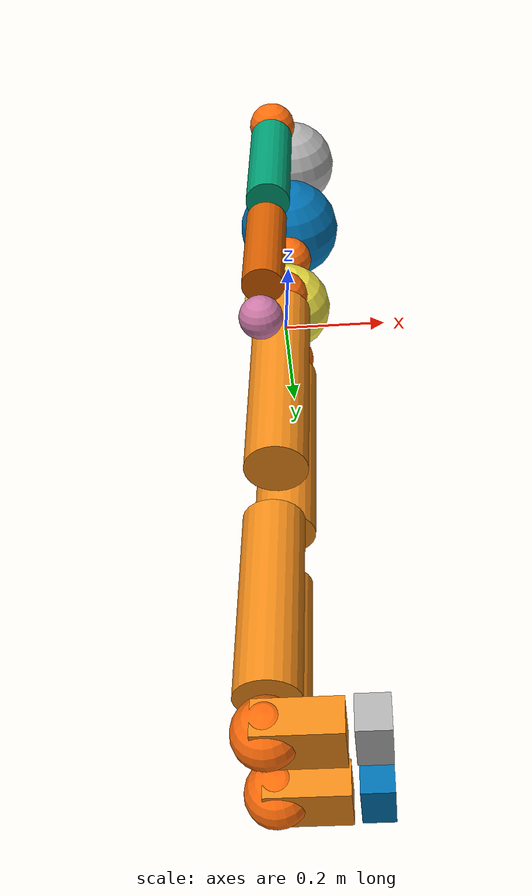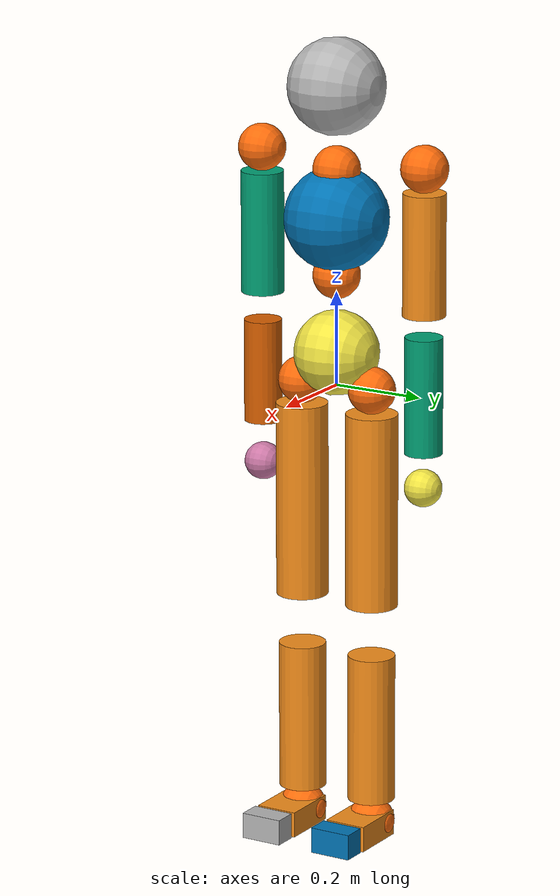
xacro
<?xml version="1.0"?>
<robot  xmlns:xacro="http://www.ros.org/wiki/xacro"  name="dumpUrdf">
  <xacro:include filename="$(find wearable_robot_description)/urdf/human_45dof.gazebo"/>

<xacro:macro name="ball_joint" params="parent child limit effort_limit *origin">

  <link name="${parent}_${child}_link1">
    <inertial>
      <mass value="1e-02" />
      <inertia ixx="1e-02" ixy="0" ixz="0" iyy="1e-02" iyz="0" izz="1e-02" />
    </inertial>
  </link>

  <joint name="j_${parent}_${child}_joint1" type="revolute">
	<xacro:insert_block name="origin"/>
    <parent link="${parent}"/>
    <child link="${parent}_${child}_link1"/>
    <axis xyz="1 0 0" />
	<limit effort="${effort_limit}" lower="${-limit}" upper="${limit}" velocity="3"/>
  </joint>

  <link name="${parent}_${child}_link2">
    <inertial>
      <mass value="1e-02" />
      <inertia ixx="1e-02" ixy="0" ixz="0" iyy="1e-02" iyz="0" izz="1e-02" />
    </inertial>

	<visual>
		<geometry>
			<sphere radius="0.05"  />
		</geometry>
		<material name="orange"/>
	</visual>
  </link>

  <joint name="j_${parent}_${child}_joint2" type="revolute">
    <parent link="${parent}_${child}_link1"/>
    <child link="${parent}_${child}_link2"/>
    <axis xyz="0 1 0" />
	<limit effort="${effort_limit}" lower="${-limit}" upper="${limit}" velocity="3"/>
  </joint>

  <joint name="j_${parent}_${child}_joint3" type="revolute">
    <parent link="${parent}_${child}_link2"/>
    <child link="${child}"/>
    <axis xyz="0 0 1" />
	<limit effort="${effort_limit}" lower="${-limit}" upper="${limit}" velocity="3"/>
  </joint>

</xacro:macro>

<xacro:macro name="sphere_v_c" params="radius *origin">
	<collision>
		<xacro:insert_block name="origin"/>
		<geometry>
			<sphere radius = "${radius/2}"/>
		</geometry>
	</collision>
	<visual>
		<xacro:insert_block name="origin"/>
		<geometry>
			<sphere radius="${radius/2}"/>
		</geometry>
	</visual>
</xacro:macro>

<xacro:macro name="cylinder_v_c" params="radius length *origin">
	<collision>
		<xacro:insert_block name="origin"/>
		<geometry>
			<cylinder length="${length*3/4}" radius = "${radius/4}"/>
		</geometry>
	</collision>
	<visual>
		<xacro:insert_block name="origin"/>
		<geometry>
			<cylinder length="${length}" radius="${radius/2}"/>
		</geometry>
	</visual>
</xacro:macro>

<xacro:macro name="box_v_c" params="x y z *origin">
	<collision>
		<xacro:insert_block name="origin"/>
		<geometry>
			<box size="${x} ${y} ${z}" />
		</geometry>
	</collision>
	<visual>
		<xacro:insert_block name="origin"/>
		<geometry>
			<box size="${x} ${y} ${z}" />
		</geometry>
	</visual>

</xacro:macro>

  <link name="world"/>
  <joint name="world_to_baselink_fixed" type="fixed">
    <parent link="world" />
    <child  link = "base_link" />
    <origin xyz="0 0 0" rpy="0 0 0" />
  </joint>

  <xacro:include filename="$(find wearable_robot_description)/urdf/humans/W0001.urdf"/>

  <ros2_control name="GazeboSystem" type="system">
    <hardware>
      <plugin>gazebo_ros2_control/GazeboSystem</plugin>
    </hardware>

    <joint name="j_left_elbow">
      <command_interface name="effort">
        <param name="min">-300.0</param>
        <param name="max">+300.0</param>
      </command_interface>
      <state_interface name="position"/>
      <state_interface name="velocity"/>
      <state_interface name="effort"/>
    </joint>

  </ros2_control>

</robot>

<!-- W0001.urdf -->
<robot name="W0001">
            <material name="orange">
                <color rgba="1.0 0.4235294117647059 0.0392156862745098 1.0"/>
            </material>
            <link name="base_link">
                </link>
            <link name="base">
                </link>
            <joint name="j_base_base_link_rotation" type="fixed">
                <parent link="base_link"/>
                <child link="base"/>
                <origin rpy="1.5707963267948966 0 0" xyz="0 0 0"/>
            </joint>
            <link name="root">
                <inertial>
                <origin rpy="0 0 0" xyz="0.0 0.07 0.0"/>
                <mass value="6.000000"/>
                <inertia ixx="0.019440000000000002" ixy="0" ixz="0" iyy="0.019440000000000002" iyz="0" izz="0.019440000000000002"/>
                </inertial>
                <collision>
                <origin rpy="0 0 0" xyz="0.000000 0.070000 0.000000"/>
                <geometry>
                    <sphere radius="0.09"/>
                </geometry>
                </collision>
                <visual>
                <origin rpy="0 0 0" xyz="0.000000 0.070000 0.000000"/>
                <geometry>
                    <sphere radius="0.09"/>
                </geometry>
                </visual>
            </link>
            <joint name="j_root" type="fixed">
                <parent link="base"/>
                <child link="root"/>
                <origin rpy="0 0 0" xyz="0 0.000000 0.000000"/>
            </joint>
            <link name="chest">
                <inertial>
                <origin rpy="0 0 0" xyz="0.000000 0.120000 0.000000"/>
                <mass value="14.000000"/>
                <inertia ixx="0.06776000000000001" ixy="0" ixz="0" iyy="0.06776000000000001" iyz="0" izz="0.06776000000000001"/>
                </inertial>
                <collision>
                <origin rpy="0 0 0" xyz="0.000000 0.120000 0.000000"/>
                <geometry>
                    <sphere radius="0.11"/>
                </geometry>
                </collision>
                <visual>
                <origin rpy="0 0 0" xyz="0.000000 0.120000 0.000000"/>
                <geometry>
                    <sphere radius="0.11"/>
                </geometry>
                </visual>
            </link>
            <link name="root_chest_link1">
                <inertial>
                <mass value="1e-02"/>
                <inertia ixx="1e-02" ixy="0" ixz="0" iyy="1e-02" iyz="0" izz="1e-02"/>
                </inertial>
           </link>
            <joint name="j_root_chest_joint1" type="fixed">
                <origin rpy="0 0 0" xyz="0.0 0.236151 0.000000"/>
                <parent link="root"/>
                <child link="root_chest_link1"/>
                <axis xyz="1 0 0"/>
            </joint>
            <link name="root_chest_link2">
                <inertial>
                <mass value="1e-02"/>
                <inertia ixx="1e-02" ixy="0" ixz="0" iyy="1e-02" iyz="0" izz="1e-02"/>
                </inertial>
                <visual>
                <geometry>
                    <sphere radius="0.05"/>
                </geometry>
                <material name="orange"/>
                </visual>
            </link>
            <joint name="j_root_chest_joint2" type="fixed">
                <parent link="root_chest_link1"/>
                <child link="root_chest_link2"/>
                <axis xyz="0 1 0"/>
            </joint>
            <joint name="j_root_chest_joint3" type="fixed">
                <parent link="root_chest_link2"/>
                <child link="chest"/>
                <axis xyz="0 0 1"/>
            </joint>
            <link name="neck">
                <inertial>
                <origin rpy="0 0 0" xyz="0.0 0.175 0.0"/>
                <mass value="2.000000"/>
                <inertia ixx="0.008405" ixy="0" ixz="0" iyy="0.008405" iyz="0" izz="0.008405"/>
                </inertial>
                <collision>
                <origin rpy="0 0 0" xyz="0.0 0.175 0.0"/>
                <geometry>
                    <sphere radius="0.1025"/>
                </geometry>
                </collision>
                <visual>
                <origin rpy="0 0 0" xyz="0.0 0.175 0.0"/>
                <geometry>
                    <sphere radius="0.1025"/>
                </geometry>
                </visual>
            </link>
            <link name="chest_neck_link1">
                <inertial>
                <mass value="1e-02"/>
                <inertia ixx="1e-02" ixy="0" ixz="0" iyy="1e-02" iyz="0" izz="1e-02"/>
                </inertial>
            </link>
            <joint name="j_chest_neck_joint1" type="revolute">
                <origin rpy="0 0 0" xyz="0.000000 0.223894 0.000000"/>
                <parent link="chest"/>
                <child link="chest_neck_link1"/>
                <axis xyz="1 0 0"/>
                <limit effort="50" lower="-0.01" upper="0.01" velocity="3"/>
            </joint>
            <link name="chest_neck_link2">
                <inertial>
                <mass value="1e-02"/>
                <inertia ixx="1e-02" ixy="0" ixz="0" iyy="1e-02" iyz="0" izz="1e-02"/>
                </inertial>
                <visual>
                <geometry>
                    <sphere radius="0.05"/>
                </geometry>
                <material name="orange"/>
                </visual>
            </link>
            <joint name="j_chest_neck_joint2" type="revolute">
                <parent link="chest_neck_link1"/>
                <child link="chest_neck_link2"/>
                <axis xyz="0 1 0"/>
                <limit effort="50" lower="-1" upper="1" velocity="3"/>
            </joint>
            <joint name="j_chest_neck_joint3" type="revolute">
                <parent link="chest_neck_link2"/>
                <child link="neck"/>
                <axis xyz="0 0 1"/>
                <limit effort="50" lower="-0.01" upper="0.01" velocity="3"/>
            </joint>
            <link name="right_hip">
                <inertial>
                <origin rpy="0 0 0" xyz="0.000000 -0.210000 0.000000"/>
                <mass value="4.500000"/>
                <inertia ixx="0.037153124999999995" ixy="0.0" ixz="0.0" iyy="0.037153124999999995" iyz="0.0" izz="0.00680625"/>
                </inertial>
                <collision>
                <origin rpy="1.5707963267948966 0 0" xyz="0.000000 -0.210000 0.000000"/>
                <geometry>
                    <cylinder length="0.22499999999999998" radius="0.0275"/>
                </geometry>
                </collision>
                <visual>
                <origin rpy="1.5707963267948966 0 0" xyz="0.000000 -0.25925000000000004 0.000000"/>
                <geometry>
                    <cylinder length="0.4185000000000001" radius="0.055"/>
                </geometry>
                </visual>
            </link>
            <link name="root_right_hip_link1">
                <inertial>
                <mass value="1e-02"/>
                <inertia ixx="1e-02" ixy="0" ixz="0" iyy="1e-02" iyz="0" izz="1e-02"/>
                </inertial>
            </link>
            <joint name="j_root_right_hip_joint1" type="revolute">
                <origin rpy="0 0 0" xyz="0.000000 0.000000 0.084887"/>
                <parent link="root"/>
                <child link="root_right_hip_link1"/>
                <axis xyz="1 0 0"/>
                <limit effort="200" lower="-1.5" upper="1.5" velocity="3"/>
            </joint>
            <link name="root_right_hip_link2">
                <inertial>
                <mass value="1e-02"/>
                <inertia ixx="1e-02" ixy="0" ixz="0" iyy="1e-02" iyz="0" izz="1e-02"/>
                </inertial>
                <visual>
                <geometry>
                    <sphere radius="0.05"/>
                </geometry>
                <material name="orange"/>
                </visual>
            </link>
            <joint name="j_root_right_hip_joint2" type="revolute">
                <parent link="root_right_hip_link1"/>
                <child link="root_right_hip_link2"/>
                <axis xyz="0 1 0"/>
                <limit effort="200" lower="-1.5" upper="1.5" velocity="3"/>
            </joint>
            <joint name="j_root_right_hip_joint3" type="revolute">
                <parent link="root_right_hip_link2"/>
                <child link="right_hip"/>
                <axis xyz="0 0 1"/>
                <limit effort="200" lower="-1.5" upper="1.5" velocity="3"/>
            </joint>
            <link name="right_knee">
                <inertial>
                <origin rpy="0 0 0" xyz="0.000000 -0.200000 0.000000"/>
                <mass value="3.000000"/>
                <inertia ixx="0.1" ixy="0" ixz="0" iyy="0.1" iyz="0" izz="0.1"/>
                </inertial>
                <collision>
                <origin rpy="1.5707963267948966 0 0" xyz="0.000000 -0.200000 0.000000"/>
                <geometry>
                    <cylinder length="0.23249999999999998" radius="0.025"/>
                </geometry>
                </collision>
                <visual>
                <origin rpy="1.5707963267948966 0 0" xyz="0.000000 -0.2 0.000000"/>
                <geometry>
                    <cylinder length="0.32" radius="0.05"/>
                </geometry>
                </visual>
            </link>
            <joint name="j_right_knee" type="revolute">
                <parent link="right_hip"/>
                <child link="right_knee"/>
                <limit effort="150.0" lower="-3.14" upper="0." velocity="0.5"/>
                <origin rpy="0 0 0" xyz="0.000000 -0.5385000000000002 0.000000"/>
                <axis xyz="0.000000 0.000000 1.000000"/>
            </joint>
            <link name="right_ankle">
                <inertial>
                <origin rpy="0 0 0" xyz="0.045 -0.00225 0.000000"/>
                <mass value="1.000000"/>
                <inertia ixx="0.0009270833333333333" ixy="0.0" ixz="0.0" iyy="0.0028628333333333327" iyz="0.0" izz="0.003285749999999999"/>
                </inertial>
                <collision>
                <origin rpy="0 0 0" xyz="0.045 -0.00225 0.000000"/>
                <geometry>
                    <box size="0.127 0.055 0.09"/>
                </geometry>
                </collision>
                <visual>
                <origin rpy="0 0 0" xyz="0.045 -0.00225 0.000000"/>
                <geometry>
                    <box size="0.127 0.055 0.09"/>
                </geometry>
                </visual>
            </link>
            <joint name="j_right_toe" type="fixed">
                <parent link="right_ankle"/>
                <child link="right_toe"/>
                <limit effort="150.0" lower="-3.14" upper="0." velocity="0.5"/>
                <origin rpy="0 0 0" xyz="0.1 0.0 0.0"/>
                <axis xyz="0.000000 0.000000 1.000000"/>
            </joint>
            <link name="right_toe">
                <inertial>
                <origin rpy="0 0 0" xyz="0.045 0.0 0.0"/>
                <mass value="0.3"/>
                <inertia ixx="0.0009270833333333333" ixy="0.0" ixz="0.0" iyy="0.0028628333333333327" iyz="0.0" izz="0.003285749999999999"/>
                </inertial>
                <collision>
                <origin rpy="0 0 0" xyz="0.045 0.0 0.0"/>
                <geometry>
                    <box size="0.05 0.055 0.09"/>
                </geometry>
                </collision>
                <visual>
                <origin rpy="0 0 0" xyz="0.045 0.0 0.0"/>
                <geometry>
                    <box size="0.05 0.055 0.09"/>
                </geometry>
                </visual>
            </link>
            <link name="right_knee_right_ankle_link1">
                <inertial>
                <mass value="1e-02"/>
                <inertia ixx="1e-02" ixy="0" ixz="0" iyy="1e-02" iyz="0" izz="1e-02"/>
                </inertial>
            </link>
            <joint name="j_right_knee_right_ankle_joint1" type="revolute">
                <origin rpy="0 0 0" xyz="0.000000 -0.41000000000000003 0.000000"/>
                <parent link="right_knee"/>
                <child link="right_knee_right_ankle_link1"/>
                <axis xyz="1 0 0"/>
                <limit effort="90" lower="-1.2" upper="1.2" velocity="3"/>
            </joint>
            <link name="right_knee_right_ankle_link2">
                <inertial>
                <mass value="1e-02"/>
                <inertia ixx="1e-02" ixy="0" ixz="0" iyy="1e-02" iyz="0" izz="1e-02"/>
                </inertial>
                <visual>
                <geometry>
                    <sphere radius="0.05"/>
                </geometry>
                <material name="orange"/>
                </visual>
            </link>
            <joint name="j_right_knee_right_ankle_joint2" type="revolute">
                <parent link="right_knee_right_ankle_link1"/>
                <child link="right_knee_right_ankle_link2"/>
                <axis xyz="0 1 0"/>
                <limit effort="90" lower="-1.2" upper="1.2" velocity="3"/>
            </joint>
            <joint name="j_right_knee_right_ankle_joint3" type="revolute">
                <parent link="right_knee_right_ankle_link2"/>
                <child link="right_ankle"/>
                <axis xyz="0 0 1"/>
                <limit effort="90" lower="-1.2" upper="1.2" velocity="3"/>
            </joint>
            <link name="right_shoulder">
                <inertial>
                <origin rpy="0 0 0" xyz="0.000000 -0.140000 0.000000"/>
                <mass value="1.500000"/>
                <inertia ixx="0.004809374999999999" ixy="0.0" ixz="0.0" iyy="0.004809374999999999" iyz="0.0" izz="0.0015187500000000001"/>
                </inertial>
                <collision>
                <origin rpy="1.5707963267948966 0 0" xyz="0.000000 -0.140000 0.000000"/>
                <geometry>
                    <cylinder length="0.135" radius="0.0225"/>
                </geometry>
                </collision>
                <visual>
                <origin rpy="1.5707963267948966 0 0" xyz="0.000000 -0.18 0.000000"/>
                <geometry>
                    <cylinder length="0.26" radius="0.045"/>
                </geometry>
                </visual>
            </link>
            <link name="chest_right_shoulder_link1">
                <inertial>
                <mass value="1e-02"/>
                <inertia ixx="1e-02" ixy="0" ixz="0" iyy="1e-02" iyz="0" izz="1e-02"/>
                </inertial>
            </link>
            <joint name="j_chest_right_shoulder_joint1" type="revolute">
                <origin rpy="0 0 0" xyz="-0.02406 0.24350 0.195"/>
                <parent link="chest"/>
                <child link="chest_right_shoulder_link1"/>
                <axis xyz="1 0 0"/>
                <limit effort="100" lower="-3.14" upper="3.14" velocity="3"/>
            </joint>
            <link name="chest_right_shoulder_link2">
                <inertial>
                <mass value="1e-02"/>
                <inertia ixx="1e-02" ixy="0" ixz="0" iyy="1e-02" iyz="0" izz="1e-02"/>
                </inertial>
                <visual>
                <geometry>
                    <sphere radius="0.05"/>
                </geometry>
                <material name="orange"/>
                </visual>
            </link>
            <joint name="j_chest_right_shoulder_joint2" type="revolute">
                <parent link="chest_right_shoulder_link1"/>
                <child link="chest_right_shoulder_link2"/>
                <axis xyz="0 1 0"/>
                <limit effort="100" lower="-3.14" upper="3.14" velocity="3"/>
            </joint>
            <joint name="j_chest_right_shoulder_joint3" type="revolute">
                <parent link="chest_right_shoulder_link2"/>
                <child link="right_shoulder"/>
                <axis xyz="0 0 1"/>
                <limit effort="100" lower="-3.14" upper="3.14" velocity="3"/>
            </joint>
            <link name="right_elbow">
                <inertial>
                <origin rpy="0 0 0" xyz="0.000000 -0.120000 0.000000"/>
                <mass value="1.000000"/>
                <inertia ixx="0.0019187499999999999" ixy="0.0" ixz="0.0" iyy="0.0019187499999999999" iyz="0.0" izz="0.0008"/>
                </inertial>
                <collision>
                <origin rpy="1.5707963267948966 0 0" xyz="0.0 -0.12 0.0"/>
                <geometry>
                    <cylinder length="0.10125" radius="0.02"/>
                </geometry>
                </collision>
                <visual>
                <origin rpy="1.5707963267948966 0 0" xyz="0.0 -0.12 0.0"/>
                <geometry>
                    <cylinder length="0.22" radius="0.04"/>
                </geometry>
                </visual>
            </link>
            <joint name="j_right_elbow" type="revolute">
                <parent link="right_shoulder"/>
                <child link="right_elbow"/>
                <limit effort="60.0" lower="0" upper="3.14" velocity="0.5"/>
                <origin rpy="0 0 0" xyz="0.000000 -0.36 0.000000"/>
                <axis xyz="0.000000 0.000000 1.000000"/>
            </joint>
            <link name="right_wrist">
                <inertial>
                <origin rpy="0 0 0" xyz="0.000000 0.000000 0.000000"/>
                <mass value="0.500000"/>
                <inertia ixx="0.00032" ixy="0" ixz="0" iyy="0.00032" iyz="0" izz="0.00032"/>
                </inertial>
                <collision>
                <origin rpy="0 0 0" xyz="0.000000 0.000000 0.000000"/>
                <geometry>
                    <sphere radius="0.04"/>
                </geometry>
                </collision>
                <visual>
                <origin rpy="0 0 0" xyz="0.000000 0.000000 0.000000"/>
                <geometry>
                    <sphere radius="0.04"/>
                </geometry>
                </visual>
            </link>
            <joint name="j_right_wrist" type="fixed">
                <parent link="right_elbow"/>
                <child link="right_wrist"/>
                <origin rpy="0 0 0" xyz="0.000000 -0.32 0.000000"/>
            </joint>
            <link name="left_hip">
                <inertial>
                <origin rpy="0 0 0" xyz="0.000000 -0.210000 0.000000"/>
                <mass value="4.500000"/>
                <inertia ixx="0.037153124999999995" ixy="0.0" ixz="0.0" iyy="0.037153124999999995" iyz="0.0" izz="0.00680625"/>
                </inertial>
                <collision>
                <origin rpy="1.5707963267948966 0 0" xyz="0.000000 -0.210000 0.000000"/>
                <geometry>
                    <cylinder length="0.22499999999999998" radius="0.0275"/>
                </geometry>
                </collision>
                <visual>
                <origin rpy="1.5707963267948966 0 0" xyz="0.000000 -0.25925000000000004 0.000000"/>
                <geometry>
                    <cylinder length="0.4185000000000001" radius="0.055"/>
                </geometry>
                </visual>
            </link>
            <link name="root_left_hip_link1">
                <inertial>
                <mass value="1e-02"/>
                <inertia ixx="1e-02" ixy="0" ixz="0" iyy="1e-02" iyz="0" izz="1e-02"/>
                </inertial>
            </link>
            <joint name="j_root_left_hip_joint1" type="revolute">
                <origin rpy="0 0 0" xyz="0.000000 0.000000 -0.084887"/>
                <parent link="root"/>
                <child link="root_left_hip_link1"/>
                <axis xyz="1 0 0"/>
                <limit effort="200" lower="-1.5" upper="1.5" velocity="3"/>
            </joint>
            <link name="root_left_hip_link2">
                <inertial>
                <mass value="1e-02"/>
                <inertia ixx="1e-02" ixy="0" ixz="0" iyy="1e-02" iyz="0" izz="1e-02"/>
                </inertial>
                <visual>
                <geometry>
                    <sphere radius="0.05"/>
                </geometry>
                <material name="orange"/>
                </visual>
            </link>
            <joint name="j_root_left_hip_joint2" type="revolute">
                <parent link="root_left_hip_link1"/>
                <child link="root_left_hip_link2"/>
                <axis xyz="0 1 0"/>
                <limit effort="200" lower="-1.5" upper="1.5" velocity="3"/>
            </joint>
            <joint name="j_root_left_hip_joint3" type="revolute">
                <parent link="root_left_hip_link2"/>
                <child link="left_hip"/>
                <axis xyz="0 0 1"/>
                <limit effort="200" lower="-1.5" upper="1.5" velocity="3"/>
            </joint>
            <link name="left_knee">
                <inertial>
                <origin rpy="0 0 0" xyz="0.000000 -0.200000 0.000000"/>
                <mass value="3.000000"/>
                <inertia ixx="0.025900000000000003" ixy="0.0" ixz="0.0" iyy="0.025900000000000003" iyz="0.0" izz="0.0037500000000000007"/>
                </inertial>
                <collision>
                <origin rpy="1.5707963267948966 0 0" xyz="0.000000 -0.200000 0.000000"/>
                <geometry>
                    <cylinder length="0.23249999999999998" radius="0.025"/>
                </geometry>
                </collision>
                <visual>
                <origin rpy="1.5707963267948966 0 0" xyz="0.000000 -0.2 0.000000"/>
                <geometry>
                    <cylinder length="0.32" radius="0.05"/>
                </geometry>
                </visual>
            </link>
            <joint name="j_left_knee" type="revolute">
                <parent link="left_hip"/>
                <child link="left_knee"/>
                <limit effort="150.0" lower="-3.14" upper="0." velocity="0.5"/>
                <origin rpy="0 0 0" xyz="0.000000 -0.5385000000000002 0.000000"/>
                <axis xyz="0.000000 0.000000 1.000000"/>
            </joint>
            <link name="left_ankle">
                <inertial>
                <origin rpy="0 0 0" xyz="0.045 -0.00225 0.0"/>
                <mass value="0.7"/>
                <inertia ixx="0.0009270833333333333" ixy="0.0" ixz="0.0" iyy="0.0028628333333333327" iyz="0.0" izz="0.003285749999999999"/>
                </inertial>
                <collision>
                <origin rpy="0 0 0" xyz="0.045 -0.00225 0.0"/>
                <geometry>
                    <box size="0.127 0.055 0.09"/>
                </geometry>
                </collision>
                <visual>
                <origin rpy="0 0 0" xyz="0.045 -0.00225 0.0"/>
                <geometry>
                    <box size="0.127 0.055 0.09"/>
                </geometry>
                </visual>
            </link>
            <joint name="j_left_toe" type="fixed">
                <parent link="left_ankle"/>
                <child link="left_toe"/>
                <limit effort="150.0" lower="-3.14" upper="0." velocity="0.5"/>
                <origin rpy="0 0 0" xyz="0.1 0.0 0.0"/>
                <axis xyz="0.000000 0.000000 1.000000"/>
            </joint>
            <link name="left_toe">
                <inertial>
                <origin rpy="0 0 0" xyz="0.045 0.0 0.0"/>
                <mass value="0.3"/>
                <inertia ixx="0.0009270833333333333" ixy="0.0" ixz="0.0" iyy="0.0028628333333333327" iyz="0.0" izz="0.003285749999999999"/>
                </inertial>
                <collision>
                <origin rpy="0 0 0" xyz="0.045 0.0 0.0"/>
                <geometry>
                    <box size="0.05 0.055 0.09"/>
                </geometry>
                </collision>
                <visual>
                <origin rpy="0 0 0" xyz="0.045 0.0 0.0"/>
                <geometry>
                    <box size="0.05 0.055 0.09"/>
                </geometry>
                </visual>
            </link>
            <link name="left_knee_left_ankle_link1">
                <inertial>
                <mass value="1e-02"/>
                <inertia ixx="1e-02" ixy="0" ixz="0" iyy="1e-02" iyz="0" izz="1e-02"/>
                </inertial>
            </link>
            <joint name="j_left_knee_left_ankle_joint1" type="revolute">
                <origin rpy="0 0 0" xyz="0.000000 -0.41000000000000003 0.000000"/>
                <parent link="left_knee"/>
                <child link="left_knee_left_ankle_link1"/>
                <axis xyz="1 0 0"/>
                <limit effort="90" lower="-1.2" upper="1.2" velocity="3"/>
            </joint>
            <link name="left_knee_left_ankle_link2">
                <inertial>
                <mass value="1e-02"/>
                <inertia ixx="1e-02" ixy="0" ixz="0" iyy="1e-02" iyz="0" izz="1e-02"/>
                </inertial>
                <visual>
                <geometry>
                    <sphere radius="0.05"/>
                </geometry>
                <material name="orange"/>
                </visual>
            </link>
            <joint name="j_left_knee_left_ankle_joint2" type="revolute">
                <parent link="left_knee_left_ankle_link1"/>
                <child link="left_knee_left_ankle_link2"/>
                <axis xyz="0 1 0"/>
                <limit effort="90" lower="-1.2" upper="1.2" velocity="3"/>
            </joint>
            <joint name="j_left_knee_left_ankle_joint3" type="revolute">
                <parent link="left_knee_left_ankle_link2"/>
                <child link="left_ankle"/>
                <axis xyz="0 0 1"/>
                <limit effort="90" lower="-1.2" upper="1.2" velocity="3"/>
            </joint>
            <link name="left_shoulder">
                <inertial>
                <origin rpy="0 0 0" xyz="0.000000 -0.140000 0.000000"/>
                <mass value="1.500000"/>
                <inertia ixx="0.004809374999999999" ixy="0.0" ixz="0.0" iyy="0.004809374999999999" iyz="0.0" izz="0.0015187500000000001"/>
                </inertial>
                <collision>
                <origin rpy="1.5707963267948966 0 0" xyz="0.000000 -0.140000 0.000000"/>
                <geometry>
                    <cylinder length="0.135" radius="0.045"/>
                </geometry>
                </collision>
                <visual>
                <origin rpy="1.5707963267948966 0 0" xyz="0.000000 -0.18 0.000000"/>
                <geometry>
                    <cylinder length="0.26" radius="0.045"/>
                </geometry>
                </visual>
            </link>
            <link name="chest_left_shoulder_link1">
                <inertial>
                <mass value="1e-02"/>
                <inertia ixx="1e-02" ixy="0" ixz="0" iyy="1e-02" iyz="0" izz="1e-02"/>
                </inertial>
            </link>
            <joint name="j_chest_left_shoulder_joint1" type="revolute">
                <origin rpy="0 0 0" xyz="-0.02405 0.24350 -0.195"/>
                <parent link="chest"/>
                <child link="chest_left_shoulder_link1"/>
                <axis xyz="1 0 0"/>
                <limit effort="100" lower="-3.14" upper="3.14" velocity="3"/>
            </joint>
            <link name="chest_left_shoulder_link2">
                <inertial>
                <mass value="1e-02"/>
                <inertia ixx="1e-02" ixy="0" ixz="0" iyy="1e-02" iyz="0" izz="1e-02"/>
                </inertial>
                <visual>
                <geometry>
                    <sphere radius="0.05"/>
                </geometry>
                <material name="orange"/>
                </visual>
            </link>
            <joint name="j_chest_left_shoulder_joint2" type="revolute">
                <parent link="chest_left_shoulder_link1"/>
                <child link="chest_left_shoulder_link2"/>
                <axis xyz="0 1 0"/>
                <limit effort="100" lower="-0.01" upper="0.01" velocity="3"/>
            </joint>
            <joint name="j_chest_left_shoulder_joint3" type="revolute">
                <parent link="chest_left_shoulder_link2"/>
                <child link="left_shoulder"/>
                <axis xyz="0 0 1"/>
                <limit effort="100" lower="-0.01" upper="0.01" velocity="3"/>
            </joint>
            <link name="left_elbow">
                <inertial>
                <origin rpy="0 0 0" xyz="0.000000 -0.12 0.000000"/>
                <mass value="1.000000"/>
                <inertia ixx="0.0019187499999999999" ixy="0.0" ixz="0.0" iyy="0.0019187499999999999" iyz="0.0" izz="0.0008"/>
                </inertial>
                <collision>
                <origin rpy="1.5707963267948966 0 0" xyz="0.000000 -0.12 0.000000"/>
                <geometry>
                    <cylinder length="0.24" radius="0.04"/>
                </geometry>
                </collision>
                <visual>
                <origin rpy="1.5707963267948966 0 0" xyz="0.000000 -0.12 0.000000"/>
                <geometry>
                    <cylinder length="0.25" radius="0.04"/>
                </geometry>
                </visual>
            </link>
            <joint name="j_left_elbow" type="revolute">
                <parent link="left_shoulder"/>
                <child link="left_elbow"/>
                <limit effort="300.0" lower="0" upper="3.14" velocity="100"/>
                <dynamics damping="1.0" friction="1.0"/>
                <origin rpy="0 0 0" xyz="0.000000 -0.36 0.000000"/>
                <axis xyz="0.000000 0.000000 1.000000"/>
            </joint>
            <link name="left_wrist">
                <inertial>
                <origin rpy="0 0 0" xyz="0.000000 0.000000 0.000000"/>
                <mass value="0.500000"/>
                <inertia ixx="0.00032" ixy="0" ixz="0" iyy="0.00032" iyz="0" izz="0.00032"/>
                </inertial>
                <collision>
                <origin rpy="0 0 0" xyz="0.000000 0.000000 0.000000"/>
                <geometry>
                    <sphere radius="0.04"/>
                </geometry>
                </collision>
                <visual>
                <origin rpy="0 0 0" xyz="0.000000 0.000000 0.000000"/>
                <geometry>
                    <sphere radius="0.04"/>
                </geometry>
                </visual>
            </link>
            <joint name="j_left_wrist_joint" type="fixed">
                <parent link="left_elbow"/>
                <child link="left_wrist"/>
                <origin rpy="0 0 0" xyz="0.000000 -0.32 0.000000"/>
            </joint>
            </robot>
